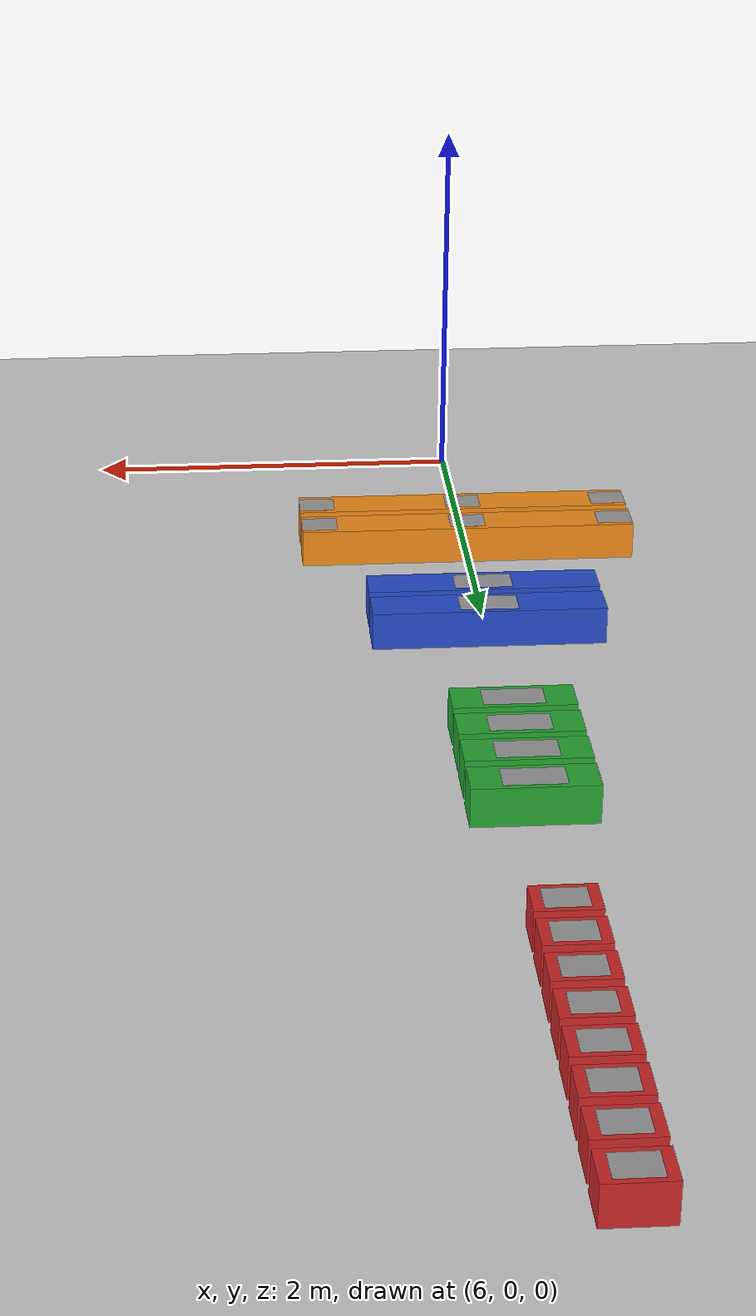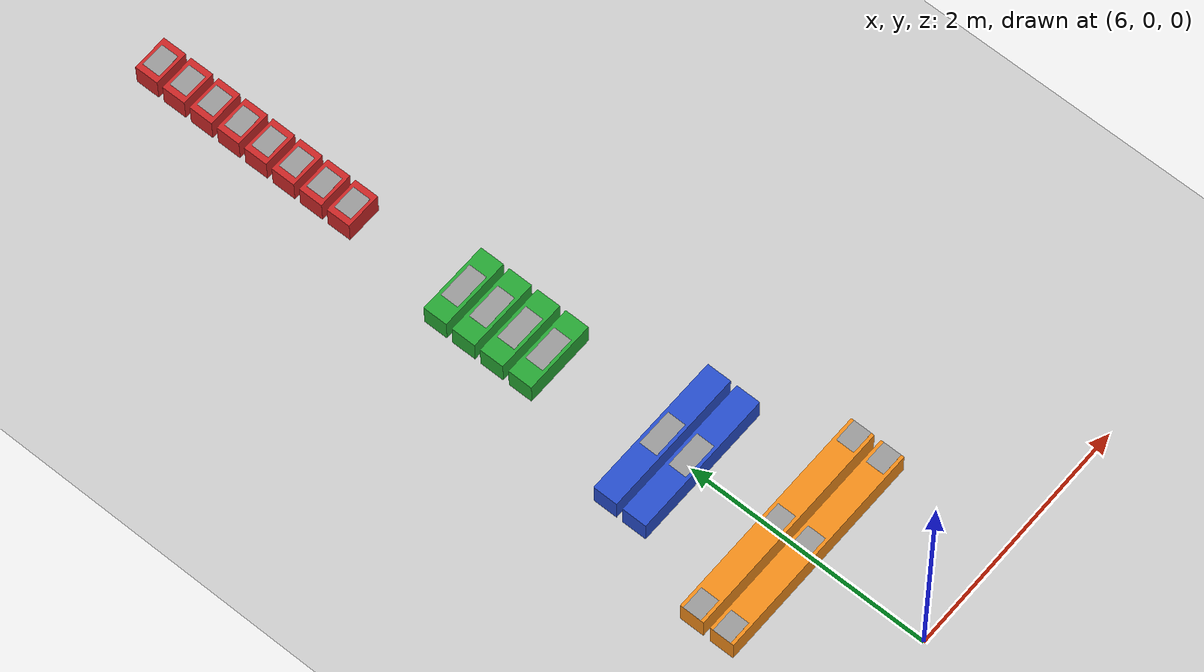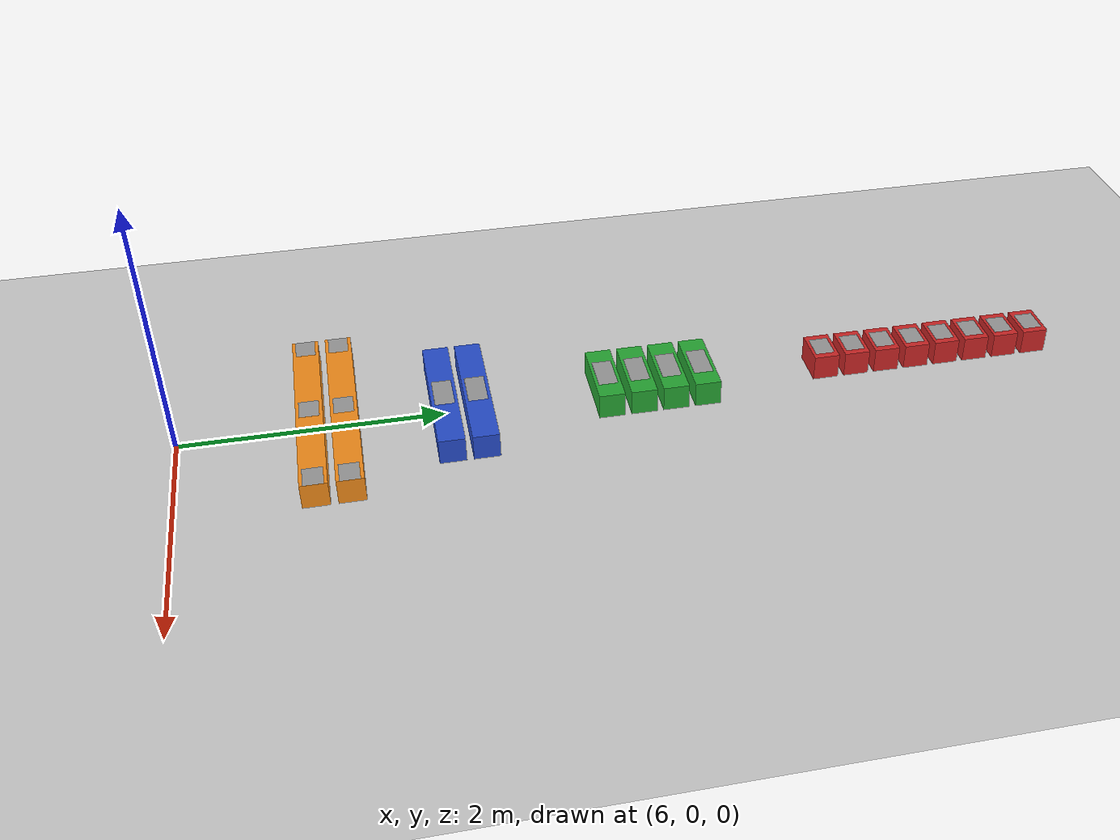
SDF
<sdf version="1.6">
 <world name="default">
  <light name="sun" type="directional">
   <pose>0 0 10 0 -0 0</pose>
   <diffuse>0.8 0.8 0.8 1</diffuse>
   <specular>0.2 0.2 0.2 1</specular>
   <attenuation>
    <range>1000</range>
    <constant>0.9</constant>
    <linear>0.01</linear>
    <quadratic>0.001</quadratic>
   </attenuation>
   <direction>-0.5 0.1 -0.9</direction>
  </light>
  <model name="ground_plane">
   <static>1</static>
   <link name="link">
    <collision name="collision">
     <geometry><plane><normal>0 0 1</normal><size>100 100</size></plane></geometry>
     <surface>
      <contact><collide_bitmask>65535</collide_bitmask></contact>
      <friction><ode><mu>100</mu><mu2>50</mu2></ode></friction>
     </surface>
    </collision>
    <visual name="visual">
     <cast_shadows>0</cast_shadows>
     <geometry><plane><normal>0 0 1</normal><size>100 100</size></plane></geometry>
     <material>
      <script><uri>file://media/materials/scripts/gazebo.material</uri><name>Gazebo/Grey</name></script>
     </material>
    </visual>
   </link>
  </model>
  <gravity>0 0 -9.8</gravity>
  <magnetic_field>6e-06 2.3e-05 -4.2e-05</magnetic_field>
  <atmosphere type="adiabatic"/>
  <physics name="default_physics" default="0" type="ode">
   <max_step_size>0.001</max_step_size>
   <real_time_factor>1</real_time_factor>
   <real_time_update_rate>1000</real_time_update_rate>
  </physics>
  <scene><ambient>0.4 0.4 0.4 1</ambient><background>0.7 0.7 0.7 1</background><shadows>1</shadows></scene>
  <audio><device>default</device></audio>
  <spherical_coordinates>
   <surface_model>EARTH_WGS84</surface_model>
   <latitude_deg>0</latitude_deg>
   <longitude_deg>0</longitude_deg>
   <elevation>0</elevation>
   <heading_deg>0</heading_deg>
  </spherical_coordinates>
  <model name="brick_red">
   <link name="base_link">
    <inertial>
     <mass>0.01</mass>
     <inertia><ixx>0.001</ixx><ixy>0</ixy><ixz>0</ixz><iyy>0.01</iyy><iyz>0</iyz><izz>0.01</izz></inertia>
    </inertial>
    <collision name="base_link_collision"><geometry><box><size>0.3 0.2 0.2</size></box></geometry></collision>
    <collision name="base_link_fixed_joint_lump__magnet_patch_collision_1">
     <pose>0 0 0.1 0 -0 0</pose>
     <geometry><box><size>0.1 0.025 0.0005</size></box></geometry>
    </collision>
    <visual name="base_link_visual">
     <geometry><box><size>0.3 0.2 0.2</size></box></geometry>
     <material>
      <script><name>Gazebo/Red</name><uri>file://media/materials/scripts/gazebo.material</uri></script>
     </material>
    </visual>
    <visual name="base_link_fixed_joint_lump__magnet_patch_visual_1">
     <pose>0 0 0.1 0 -0 0</pose>
     <geometry><box><size>0.2 0.15 0.001</size></box></geometry>
     <material>
      <script><name>Gazebo/Gray</name><uri>file://media/materials/scripts/gazebo.material</uri></script>
     </material>
    </visual>
   </link>
   <static>0</static>
   <plugin name="dipole_magnet" filename="libstorm_gazebo_dipole_magnet.so">
    <dipole_moment>0 0 0.1</dipole_moment>
    <shouldPublish>1</shouldPublish>
    <topicNs>magnet</topicNs>
    <updateRate>100</updateRate>
    <gain>1.0</gain>
    <bodyName>base_link</bodyName>
    <xyzOffset>0 0 -0.1</xyzOffset>
    <rpyOffset>0 -0 0</rpyOffset>
   </plugin>
   <pose>6 6.00001 0.100001 7e-06 -0 0.002784</pose>
  </model>
  <model name="brick_red_1">
   <link name="base_link">
    <inertial>
     <mass>0.01</mass>
     <inertia><ixx>0.001</ixx><ixy>0</ixy><ixz>0</ixz><iyy>0.01</iyy><iyz>0</iyz><izz>0.01</izz></inertia>
    </inertial>
    <collision name="base_link_collision"><geometry><box><size>0.3 0.2 0.2</size></box></geometry></collision>
    <collision name="base_link_fixed_joint_lump__magnet_patch_collision_1">
     <pose>0 0 0.1 0 -0 0</pose>
     <geometry><box><size>0.1 0.025 0.0005</size></box></geometry>
    </collision>
    <visual name="base_link_visual">
     <geometry><box><size>0.3 0.2 0.2</size></box></geometry>
     <material>
      <script><name>Gazebo/Red</name><uri>file://media/materials/scripts/gazebo.material</uri></script>
     </material>
    </visual>
    <visual name="base_link_fixed_joint_lump__magnet_patch_visual_1">
     <pose>0 0 0.1 0 -0 0</pose>
     <geometry><box><size>0.2 0.15 0.001</size></box></geometry>
     <material>
      <script><name>Gazebo/Gray</name><uri>file://media/materials/scripts/gazebo.material</uri></script>
     </material>
    </visual>
   </link>
   <static>0</static>
   <plugin name="dipole_magnet" filename="libstorm_gazebo_dipole_magnet.so">
    <dipole_moment>0 0 0.1</dipole_moment>
    <shouldPublish>1</shouldPublish>
    <topicNs>magnet</topicNs>
    <updateRate>100</updateRate>
    <gain>1.0</gain>
    <bodyName>base_link</bodyName>
    <xyzOffset>0 0 -0.1</xyzOffset>
    <rpyOffset>0 -0 0</rpyOffset>
   </plugin>
   <pose>6.00001 6.24996 0.1 0 -0 -0.004329</pose>
  </model>
  <model name="brick_red_2">
   <link name="base_link">
    <inertial>
     <mass>0.01</mass>
     <inertia><ixx>0.001</ixx><ixy>0</ixy><ixz>0</ixz><iyy>0.01</iyy><iyz>0</iyz><izz>0.01</izz></inertia>
    </inertial>
    <collision name="base_link_collision"><geometry><box><size>0.3 0.2 0.2</size></box></geometry></collision>
    <collision name="base_link_fixed_joint_lump__magnet_patch_collision_1">
     <pose>0 0 0.1 0 -0 0</pose>
     <geometry><box><size>0.1 0.025 0.0005</size></box></geometry>
    </collision>
    <visual name="base_link_visual">
     <geometry><box><size>0.3 0.2 0.2</size></box></geometry>
     <material>
      <script><name>Gazebo/Red</name><uri>file://media/materials/scripts/gazebo.material</uri></script>
     </material>
    </visual>
    <visual name="base_link_fixed_joint_lump__magnet_patch_visual_1">
     <pose>0 0 0.1 0 -0 0</pose>
     <geometry><box><size>0.2 0.15 0.001</size></box></geometry>
     <material>
      <script><name>Gazebo/Gray</name><uri>file://media/materials/scripts/gazebo.material</uri></script>
     </material>
    </visual>
   </link>
   <static>0</static>
   <plugin name="dipole_magnet" filename="libstorm_gazebo_dipole_magnet.so">
    <dipole_moment>0 0 0.1</dipole_moment>
    <shouldPublish>1</shouldPublish>
    <topicNs>magnet</topicNs>
    <updateRate>100</updateRate>
    <gain>1.0</gain>
    <bodyName>base_link</bodyName>
    <xyzOffset>0 0 -0.1</xyzOffset>
    <rpyOffset>0 -0 0</rpyOffset>
   </plugin>
   <pose>6 6.49999 0.1 -2e-06 0 0.002053</pose>
  </model>
  <model name="brick_red_3">
   <link name="base_link">
    <inertial>
     <mass>0.01</mass>
     <inertia><ixx>0.001</ixx><ixy>0</ixy><ixz>0</ixz><iyy>0.01</iyy><iyz>0</iyz><izz>0.01</izz></inertia>
    </inertial>
    <collision name="base_link_collision"><geometry><box><size>0.3 0.2 0.2</size></box></geometry></collision>
    <collision name="base_link_fixed_joint_lump__magnet_patch_collision_1">
     <pose>0 0 0.1 0 -0 0</pose>
     <geometry><box><size>0.1 0.025 0.0005</size></box></geometry>
    </collision>
    <visual name="base_link_visual">
     <geometry><box><size>0.3 0.2 0.2</size></box></geometry>
     <material>
      <script><name>Gazebo/Red</name><uri>file://media/materials/scripts/gazebo.material</uri></script>
     </material>
    </visual>
    <visual name="base_link_fixed_joint_lump__magnet_patch_visual_1">
     <pose>0 0 0.1 0 -0 0</pose>
     <geometry><box><size>0.2 0.15 0.001</size></box></geometry>
     <material>
      <script><name>Gazebo/Gray</name><uri>file://media/materials/scripts/gazebo.material</uri></script>
     </material>
    </visual>
   </link>
   <static>0</static>
   <plugin name="dipole_magnet" filename="libstorm_gazebo_dipole_magnet.so">
    <dipole_moment>0 0 0.1</dipole_moment>
    <shouldPublish>1</shouldPublish>
    <topicNs>magnet</topicNs>
    <updateRate>100</updateRate>
    <gain>1.0</gain>
    <bodyName>base_link</bodyName>
    <xyzOffset>0 0 -0.1</xyzOffset>
    <rpyOffset>0 -0 0</rpyOffset>
   </plugin>
   <pose>5.99993 5.49986 0.1 0 -0 -0.003085</pose>
  </model>
  <model name="brick_red_4">
   <link name="base_link">
    <inertial>
     <mass>0.01</mass>
     <inertia><ixx>0.001</ixx><ixy>0</ixy><ixz>0</ixz><iyy>0.01</iyy><iyz>0</iyz><izz>0.01</izz></inertia>
    </inertial>
    <collision name="base_link_collision"><geometry><box><size>0.3 0.2 0.2</size></box></geometry></collision>
    <collision name="base_link_fixed_joint_lump__magnet_patch_collision_1">
     <pose>0 0 0.1 0 -0 0</pose>
     <geometry><box><size>0.1 0.025 0.0005</size></box></geometry>
    </collision>
    <visual name="base_link_visual">
     <geometry><box><size>0.3 0.2 0.2</size></box></geometry>
     <material>
      <script><name>Gazebo/Red</name><uri>file://media/materials/scripts/gazebo.material</uri></script>
     </material>
    </visual>
    <visual name="base_link_fixed_joint_lump__magnet_patch_visual_1">
     <pose>0 0 0.1 0 -0 0</pose>
     <geometry><box><size>0.2 0.15 0.001</size></box></geometry>
     <material>
      <script><name>Gazebo/Gray</name><uri>file://media/materials/scripts/gazebo.material</uri></script>
     </material>
    </visual>
   </link>
   <static>0</static>
   <plugin name="dipole_magnet" filename="libstorm_gazebo_dipole_magnet.so">
    <dipole_moment>0 0 0.1</dipole_moment>
    <shouldPublish>1</shouldPublish>
    <topicNs>magnet</topicNs>
    <updateRate>100</updateRate>
    <gain>1.0</gain>
    <bodyName>base_link</bodyName>
    <xyzOffset>0 0 -0.1</xyzOffset>
    <rpyOffset>0 -0 0</rpyOffset>
   </plugin>
   <pose>6 6.75008 0.1 -4e-06 -0 0.003528</pose>
  </model>
  <model name="brick_red_6">
   <link name="base_link">
    <inertial>
     <mass>0.01</mass>
     <inertia><ixx>0.001</ixx><ixy>0</ixy><ixz>0</ixz><iyy>0.01</iyy><iyz>0</iyz><izz>0.01</izz></inertia>
    </inertial>
    <collision name="base_link_collision"><geometry><box><size>0.3 0.2 0.2</size></box></geometry></collision>
    <collision name="base_link_fixed_joint_lump__magnet_patch_collision_1">
     <pose>0 0 0.1 0 -0 0</pose>
     <geometry><box><size>0.1 0.025 0.0005</size></box></geometry>
    </collision>
    <visual name="base_link_visual">
     <geometry><box><size>0.3 0.2 0.2</size></box></geometry>
     <material>
      <script><name>Gazebo/Red</name><uri>file://media/materials/scripts/gazebo.material</uri></script>
     </material>
    </visual>
    <visual name="base_link_fixed_joint_lump__magnet_patch_visual_1">
     <pose>0 0 0.1 0 -0 0</pose>
     <geometry><box><size>0.2 0.15 0.001</size></box></geometry>
     <material>
      <script><name>Gazebo/Gray</name><uri>file://media/materials/scripts/gazebo.material</uri></script>
     </material>
    </visual>
   </link>
   <static>0</static>
   <plugin name="dipole_magnet" filename="libstorm_gazebo_dipole_magnet.so">
    <dipole_moment>0 0 0.1</dipole_moment>
    <shouldPublish>1</shouldPublish>
    <topicNs>magnet</topicNs>
    <updateRate>100</updateRate>
    <gain>1.0</gain>
    <bodyName>base_link</bodyName>
    <xyzOffset>0 0 -0.1</xyzOffset>
    <rpyOffset>0 -0 0</rpyOffset>
   </plugin>
   <pose>5.99999 5.75 0.1 1e-06 -0 -0.001323</pose>
  </model>
  <model name="brick_red_0">
   <link name="base_link">
    <inertial>
     <mass>0.01</mass>
     <inertia><ixx>0.001</ixx><ixy>0</ixy><ixz>0</ixz><iyy>0.01</iyy><iyz>0</iyz><izz>0.01</izz></inertia>
    </inertial>
    <collision name="base_link_collision"><geometry><box><size>0.3 0.2 0.2</size></box></geometry></collision>
    <collision name="base_link_fixed_joint_lump__magnet_patch_collision_1">
     <pose>0 0 0.1 0 -0 0</pose>
     <geometry><box><size>0.1 0.025 0.0005</size></box></geometry>
    </collision>
    <visual name="base_link_visual">
     <geometry><box><size>0.3 0.2 0.2</size></box></geometry>
     <material>
      <script><name>Gazebo/Red</name><uri>file://media/materials/scripts/gazebo.material</uri></script>
     </material>
    </visual>
    <visual name="base_link_fixed_joint_lump__magnet_patch_visual_1">
     <pose>0 0 0.1 0 -0 0</pose>
     <geometry><box><size>0.2 0.15 0.001</size></box></geometry>
     <material>
      <script><name>Gazebo/Gray</name><uri>file://media/materials/scripts/gazebo.material</uri></script>
     </material>
    </visual>
   </link>
   <static>0</static>
   <plugin name="dipole_magnet" filename="libstorm_gazebo_dipole_magnet.so">
    <dipole_moment>0 0 0.1</dipole_moment>
    <shouldPublish>1</shouldPublish>
    <topicNs>magnet</topicNs>
    <updateRate>100</updateRate>
    <gain>1.0</gain>
    <bodyName>base_link</bodyName>
    <xyzOffset>0 0 -0.1</xyzOffset>
    <rpyOffset>0 -0 0</rpyOffset>
   </plugin>
   <pose>6 5.25001 0.1 4e-06 -0 0.001949</pose>
  </model>
  <model name="brick_red_5">
   <link name="base_link">
    <inertial>
     <mass>0.01</mass>
     <inertia><ixx>0.001</ixx><ixy>0</ixy><ixz>0</ixz><iyy>0.01</iyy><iyz>0</iyz><izz>0.01</izz></inertia>
    </inertial>
    <collision name="base_link_collision"><geometry><box><size>0.3 0.2 0.2</size></box></geometry></collision>
    <collision name="base_link_fixed_joint_lump__magnet_patch_collision_1">
     <pose>0 0 0.1 0 -0 0</pose>
     <geometry><box><size>0.1 0.025 0.0005</size></box></geometry>
    </collision>
    <visual name="base_link_visual">
     <geometry><box><size>0.3 0.2 0.2</size></box></geometry>
     <material>
      <script><name>Gazebo/Red</name><uri>file://media/materials/scripts/gazebo.material</uri></script>
     </material>
    </visual>
    <visual name="base_link_fixed_joint_lump__magnet_patch_visual_1">
     <pose>0 0 0.1 0 -0 0</pose>
     <geometry><box><size>0.2 0.15 0.001</size></box></geometry>
     <material>
      <script><name>Gazebo/Gray</name><uri>file://media/materials/scripts/gazebo.material</uri></script>
     </material>
    </visual>
   </link>
   <static>0</static>
   <plugin name="dipole_magnet" filename="libstorm_gazebo_dipole_magnet.so">
    <dipole_moment>0 0 0.1</dipole_moment>
    <shouldPublish>1</shouldPublish>
    <topicNs>magnet</topicNs>
    <updateRate>100</updateRate>
    <gain>1.0</gain>
    <bodyName>base_link</bodyName>
    <xyzOffset>0 0 -0.1</xyzOffset>
    <rpyOffset>0 -0 0</rpyOffset>
   </plugin>
   <pose>6 4.99992 0.1 -4e-06 0 0.003468</pose>
  </model>
  <model name="brick_green">
   <link name="base_link">
    <inertial>
     <mass>0.01</mass>
     <inertia><ixx>0.001</ixx><ixy>0</ixy><ixz>0</ixz><iyy>0.01</iyy><iyz>0</iyz><izz>0.01</izz></inertia>
    </inertial>
    <collision name="base_link_collision"><geometry><box><size>0.6 0.2 0.2</size></box></geometry></collision>
    <collision name="base_link_fixed_joint_lump__magnet_patch_collision_1">
     <pose>0 0 0.1 0 -0 0</pose>
     <geometry><box><size>0.1 0.025 0.0005</size></box></geometry>
    </collision>
    <visual name="base_link_visual">
     <geometry><box><size>0.6 0.2 0.2</size></box></geometry>
     <material>
      <script><name>Gazebo/Green</name><uri>file://media/materials/scripts/gazebo.material</uri></script>
     </material>
    </visual>
    <visual name="base_link_fixed_joint_lump__magnet_patch_visual_1">
     <pose>0 0 0.1 0 -0 0</pose>
     <geometry><box><size>0.3 0.15 0.001</size></box></geometry>
     <material>
      <script><name>Gazebo/Gray</name><uri>file://media/materials/scripts/gazebo.material</uri></script>
     </material>
    </visual>
   </link>
   <static>0</static>
   <plugin name="dipole_magnet" filename="libstorm_gazebo_dipole_magnet.so">
    <dipole_moment>0 0 0.1</dipole_moment>
    <shouldPublish>1</shouldPublish>
    <topicNs>magnet</topicNs>
    <updateRate>100</updateRate>
    <gain>1.0</gain>
    <bodyName>base_link</bodyName>
    <xyzOffset>0 0 -0.1</xyzOffset>
    <rpyOffset>0 -0 0</rpyOffset>
   </plugin>
   <pose>6 4.0009 0.1 0 -0 3e-06</pose>
  </model>
  <model name="brick_green_0">
   <link name="base_link">
    <inertial>
     <mass>0.01</mass>
     <inertia><ixx>0.001</ixx><ixy>0</ixy><ixz>0</ixz><iyy>0.01</iyy><iyz>0</iyz><izz>0.01</izz></inertia>
    </inertial>
    <collision name="base_link_collision"><geometry><box><size>0.6 0.2 0.2</size></box></geometry></collision>
    <collision name="base_link_fixed_joint_lump__magnet_patch_collision_1">
     <pose>0 0 0.1 0 -0 0</pose>
     <geometry><box><size>0.1 0.025 0.0005</size></box></geometry>
    </collision>
    <visual name="base_link_visual">
     <geometry><box><size>0.6 0.2 0.2</size></box></geometry>
     <material>
      <script><name>Gazebo/Green</name><uri>file://media/materials/scripts/gazebo.material</uri></script>
     </material>
    </visual>
    <visual name="base_link_fixed_joint_lump__magnet_patch_visual_1">
     <pose>0 0 0.1 0 -0 0</pose>
     <geometry><box><size>0.3 0.15 0.001</size></box></geometry>
     <material>
      <script><name>Gazebo/Gray</name><uri>file://media/materials/scripts/gazebo.material</uri></script>
     </material>
    </visual>
   </link>
   <static>0</static>
   <plugin name="dipole_magnet" filename="libstorm_gazebo_dipole_magnet.so">
    <dipole_moment>0 0 0.1</dipole_moment>
    <shouldPublish>1</shouldPublish>
    <topicNs>magnet</topicNs>
    <updateRate>100</updateRate>
    <gain>1.0</gain>
    <bodyName>base_link</bodyName>
    <xyzOffset>0 0 -0.1</xyzOffset>
    <rpyOffset>0 -0 0</rpyOffset>
   </plugin>
   <pose>5.99999 3.7497 0.1 -8e-06 1e-06 1.7e-05</pose>
  </model>
  <model name="brick_green_1">
   <link name="base_link">
    <inertial>
     <mass>0.01</mass>
     <inertia><ixx>0.001</ixx><ixy>0</ixy><ixz>0</ixz><iyy>0.01</iyy><iyz>0</iyz><izz>0.01</izz></inertia>
    </inertial>
    <collision name="base_link_collision"><geometry><box><size>0.6 0.2 0.2</size></box></geometry></collision>
    <collision name="base_link_fixed_joint_lump__magnet_patch_collision_1">
     <pose>0 0 0.1 0 -0 0</pose>
     <geometry><box><size>0.1 0.025 0.0005</size></box></geometry>
    </collision>
    <visual name="base_link_visual">
     <geometry><box><size>0.6 0.2 0.2</size></box></geometry>
     <material>
      <script><name>Gazebo/Green</name><uri>file://media/materials/scripts/gazebo.material</uri></script>
     </material>
    </visual>
    <visual name="base_link_fixed_joint_lump__magnet_patch_visual_1">
     <pose>0 0 0.1 0 -0 0</pose>
     <geometry><box><size>0.3 0.15 0.001</size></box></geometry>
     <material>
      <script><name>Gazebo/Gray</name><uri>file://media/materials/scripts/gazebo.material</uri></script>
     </material>
    </visual>
   </link>
   <static>0</static>
   <plugin name="dipole_magnet" filename="libstorm_gazebo_dipole_magnet.so">
    <dipole_moment>0 0 0.1</dipole_moment>
    <shouldPublish>1</shouldPublish>
    <topicNs>magnet</topicNs>
    <updateRate>100</updateRate>
    <gain>1.0</gain>
    <bodyName>base_link</bodyName>
    <xyzOffset>0 0 -0.1</xyzOffset>
    <rpyOffset>0 -0 0</rpyOffset>
   </plugin>
   <pose>6 3.5004 0.099999 4e-06 1e-06 3.8e-05</pose>
  </model>
  <model name="brick_green_2">
   <link name="base_link">
    <inertial>
     <mass>0.01</mass>
     <inertia><ixx>0.001</ixx><ixy>0</ixy><ixz>0</ixz><iyy>0.01</iyy><iyz>0</iyz><izz>0.01</izz></inertia>
    </inertial>
    <collision name="base_link_collision"><geometry><box><size>0.6 0.2 0.2</size></box></geometry></collision>
    <collision name="base_link_fixed_joint_lump__magnet_patch_collision_1">
     <pose>0 0 0.1 0 -0 0</pose>
     <geometry><box><size>0.1 0.025 0.0005</size></box></geometry>
    </collision>
    <visual name="base_link_visual">
     <geometry><box><size>0.6 0.2 0.2</size></box></geometry>
     <material>
      <script><name>Gazebo/Green</name><uri>file://media/materials/scripts/gazebo.material</uri></script>
     </material>
    </visual>
    <visual name="base_link_fixed_joint_lump__magnet_patch_visual_1">
     <pose>0 0 0.1 0 -0 0</pose>
     <geometry><box><size>0.3 0.15 0.001</size></box></geometry>
     <material>
      <script><name>Gazebo/Gray</name><uri>file://media/materials/scripts/gazebo.material</uri></script>
     </material>
    </visual>
   </link>
   <static>0</static>
   <plugin name="dipole_magnet" filename="libstorm_gazebo_dipole_magnet.so">
    <dipole_moment>0 0 0.1</dipole_moment>
    <shouldPublish>1</shouldPublish>
    <topicNs>magnet</topicNs>
    <updateRate>100</updateRate>
    <gain>1.0</gain>
    <bodyName>base_link</bodyName>
    <xyzOffset>0 0 -0.1</xyzOffset>
    <rpyOffset>0 -0 0</rpyOffset>
   </plugin>
   <pose>5.99999 3.24917 0.099998 5e-06 -0 0.001764</pose>
  </model>
  <model name="brick_blue">
   <link name="base_link">
    <inertial>
     <mass>0.01</mass>
     <inertia><ixx>0.001</ixx><ixy>0</ixy><ixz>0</ixz><iyy>0.01</iyy><iyz>0</iyz><izz>0.01</izz></inertia>
    </inertial>
    <collision name="base_link_collision"><geometry><box><size>1.2 0.2 0.2</size></box></geometry></collision>
    <collision name="base_link_fixed_joint_lump__magnet_patch_collision_1">
     <pose>0 0 0.1 0 -0 0</pose>
     <geometry><box><size>0.1 0.025 0.0005</size></box></geometry>
    </collision>
    <visual name="base_link_visual">
     <geometry><box><size>1.2 0.2 0.2</size></box></geometry>
     <material>
      <script><name>Gazebo/Blue</name><uri>file://media/materials/scripts/gazebo.material</uri></script>
     </material>
    </visual>
    <visual name="base_link_fixed_joint_lump__magnet_patch_visual_1">
     <pose>0 0 0.1 0 -0 0</pose>
     <geometry><box><size>0.3 0.15 0.001</size></box></geometry>
     <material>
      <script><name>Gazebo/Gray</name><uri>file://media/materials/scripts/gazebo.material</uri></script>
     </material>
    </visual>
   </link>
   <static>0</static>
   <plugin name="dipole_magnet" filename="libstorm_gazebo_dipole_magnet.so">
    <dipole_moment>0 0 0.1</dipole_moment>
    <shouldPublish>1</shouldPublish>
    <topicNs>magnet</topicNs>
    <updateRate>100</updateRate>
    <gain>1.0</gain>
    <bodyName>base_link</bodyName>
    <xyzOffset>0 0 -0.1</xyzOffset>
    <rpyOffset>0 -0 0</rpyOffset>
   </plugin>
   <pose>6 2.25099 0.1 0 -0 3e-06</pose>
  </model>
  <model name="brick_blue_0">
   <link name="base_link">
    <inertial>
     <mass>0.01</mass>
     <inertia><ixx>0.001</ixx><ixy>0</ixy><ixz>0</ixz><iyy>0.01</iyy><iyz>0</iyz><izz>0.01</izz></inertia>
    </inertial>
    <collision name="base_link_collision"><geometry><box><size>1.2 0.2 0.2</size></box></geometry></collision>
    <collision name="base_link_fixed_joint_lump__magnet_patch_collision_1">
     <pose>0 0 0.1 0 -0 0</pose>
     <geometry><box><size>0.1 0.025 0.0005</size></box></geometry>
    </collision>
    <visual name="base_link_visual">
     <geometry><box><size>1.2 0.2 0.2</size></box></geometry>
     <material>
      <script><name>Gazebo/Blue</name><uri>file://media/materials/scripts/gazebo.material</uri></script>
     </material>
    </visual>
    <visual name="base_link_fixed_joint_lump__magnet_patch_visual_1">
     <pose>0 0 0.1 0 -0 0</pose>
     <geometry><box><size>0.3 0.15 0.001</size></box></geometry>
     <material>
      <script><name>Gazebo/Gray</name><uri>file://media/materials/scripts/gazebo.material</uri></script>
     </material>
    </visual>
   </link>
   <static>0</static>
   <plugin name="dipole_magnet" filename="libstorm_gazebo_dipole_magnet.so">
    <dipole_moment>0 0 0.1</dipole_moment>
    <shouldPublish>1</shouldPublish>
    <topicNs>magnet</topicNs>
    <updateRate>100</updateRate>
    <gain>1.0</gain>
    <bodyName>base_link</bodyName>
    <xyzOffset>0 0 -0.1</xyzOffset>
    <rpyOffset>0 -0 0</rpyOffset>
   </plugin>
   <pose>6 1.999 0.099997 6e-06 -3e-06 -1e-06</pose>
  </model>
  <model name="brick_orange">
   <link name="base_link">
    <inertial>
     <mass>0.01</mass>
     <inertia><ixx>0.001</ixx><ixy>0</ixy><ixz>0</ixz><iyy>0.01</iyy><iyz>0</iyz><izz>0.01</izz></inertia>
    </inertial>
    <collision name="base_link_collision"><geometry><box><size>1.8 0.2 0.2</size></box></geometry></collision>
    <collision name="base_link_fixed_joint_lump__magnet_patch_collision_0">
     <pose>-0.805 0 0.1 0 -0 0</pose>
     <geometry><box><size>0.2 0.15 0.0005</size></box></geometry>
    </collision>
    <collision name="base_link_fixed_joint_lump__magnet_patch_collision_1">
     <pose>0 0 0.1 0 -0 0</pose>
     <geometry><box><size>0.15 0.15 0.0005</size></box></geometry>
    </collision>
    <collision name="base_link_fixed_joint_lump__magnet_patch_collision_2">
     <pose>0.805 0 0.1 0 -0 0</pose>
     <geometry><box><size>0.15 0.15 0.0005</size></box></geometry>
    </collision>
    <visual name="base_link_visual">
     <geometry><box><size>1.8 0.2 0.2</size></box></geometry>
     <material>
      <script><name>Gazebo/Orange</name><uri>file://media/materials/scripts/gazebo.material</uri></script>
     </material>
    </visual>
    <visual name="base_link_fixed_joint_lump__magnet_patch_visual_0">
     <pose>-0.805 0 0.1 0 -0 0</pose>
     <geometry><box><size>0.19 0.15 0.001</size></box></geometry>
     <material>
      <script><name>Gazebo/Gray</name><uri>file://media/materials/scripts/gazebo.material</uri></script>
     </material>
    </visual>
    <visual name="base_link_fixed_joint_lump__magnet_patch_visual_1">
     <pose>0 0 0.1 0 -0 0</pose>
     <geometry><box><size>0.19 0.15 0.001</size></box></geometry>
     <material>
      <script><name>Gazebo/Gray</name><uri>file://media/materials/scripts/gazebo.material</uri></script>
     </material>
    </visual>
    <visual name="base_link_fixed_joint_lump__magnet_patch_visual_2">
     <pose>0.805 0 0.1 0 -0 0</pose>
     <geometry><box><size>0.19 0.15 0.001</size></box></geometry>
     <material>
      <script><name>Gazebo/Gray</name><uri>file://media/materials/scripts/gazebo.material</uri></script>
     </material>
    </visual>
   </link>
   <static>0</static>
   <plugin name="dipole_magnet" filename="libstorm_gazebo_dipole_magnet.so">
    <dipole_moment>0 0 0.1</dipole_moment>
    <shouldPublish>1</shouldPublish>
    <topicNs>magnet</topicNs>
    <updateRate>100</updateRate>
    <gain>1.0</gain>
    <bodyName>base_link</bodyName>
    <xyzOffset>0 0 -0.1</xyzOffset>
    <rpyOffset>0 -0 0</rpyOffset>
   </plugin>
   <plugin name="dipole_magnet" filename="libstorm_gazebo_dipole_magnet.so">
    <dipole_moment>0 0 0.1</dipole_moment>
    <shouldPublish>1</shouldPublish>
    <topicNs>magnet</topicNs>
    <updateRate>100</updateRate>
    <gain>1.0</gain>
    <bodyName>base_link</bodyName>
    <xyzOffset>-0.805 0 -0.1</xyzOffset>
    <rpyOffset>0 -0 0</rpyOffset>
   </plugin>
   <plugin name="dipole_magnet" filename="libstorm_gazebo_dipole_magnet.so">
    <dipole_moment>0 0 0.1</dipole_moment>
    <shouldPublish>1</shouldPublish>
    <topicNs>magnet</topicNs>
    <updateRate>100</updateRate>
    <gain>1.0</gain>
    <bodyName>base_link</bodyName>
    <xyzOffset>0.805 0 -0.1</xyzOffset>
    <rpyOffset>0 -0 0</rpyOffset>
   </plugin>
   <pose>6 1.25269 0.1 0 -0 0</pose>
  </model>
  <model name="brick_orange_0">
   <link name="base_link">
    <inertial>
     <mass>0.01</mass>
     <inertia><ixx>0.001</ixx><ixy>0</ixy><ixz>0</ixz><iyy>0.01</iyy><iyz>0</iyz><izz>0.01</izz></inertia>
    </inertial>
    <collision name="base_link_collision"><geometry><box><size>1.8 0.2 0.2</size></box></geometry></collision>
    <collision name="base_link_fixed_joint_lump__magnet_patch_collision_0">
     <pose>-0.805 0 0.1 0 -0 0</pose>
     <geometry><box><size>0.2 0.15 0.0005</size></box></geometry>
    </collision>
    <collision name="base_link_fixed_joint_lump__magnet_patch_collision_1">
     <pose>0 0 0.1 0 -0 0</pose>
     <geometry><box><size>0.15 0.15 0.0005</size></box></geometry>
    </collision>
    <collision name="base_link_fixed_joint_lump__magnet_patch_collision_2">
     <pose>0.805 0 0.1 0 -0 0</pose>
     <geometry><box><size>0.15 0.15 0.0005</size></box></geometry>
    </collision>
    <visual name="base_link_visual">
     <geometry><box><size>1.8 0.2 0.2</size></box></geometry>
     <material>
      <script><name>Gazebo/Orange</name><uri>file://media/materials/scripts/gazebo.material</uri></script>
     </material>
    </visual>
    <visual name="base_link_fixed_joint_lump__magnet_patch_visual_0">
     <pose>-0.805 0 0.1 0 -0 0</pose>
     <geometry><box><size>0.19 0.15 0.001</size></box></geometry>
     <material>
      <script><name>Gazebo/Gray</name><uri>file://media/materials/scripts/gazebo.material</uri></script>
     </material>
    </visual>
    <visual name="base_link_fixed_joint_lump__magnet_patch_visual_1">
     <pose>0 0 0.1 0 -0 0</pose>
     <geometry><box><size>0.19 0.15 0.001</size></box></geometry>
     <material>
      <script><name>Gazebo/Gray</name><uri>file://media/materials/scripts/gazebo.material</uri></script>
     </material>
    </visual>
    <visual name="base_link_fixed_joint_lump__magnet_patch_visual_2">
     <pose>0.805 0 0.1 0 -0 0</pose>
     <geometry><box><size>0.19 0.15 0.001</size></box></geometry>
     <material>
      <script><name>Gazebo/Gray</name><uri>file://media/materials/scripts/gazebo.material</uri></script>
     </material>
    </visual>
   </link>
   <static>0</static>
   <plugin name="dipole_magnet" filename="libstorm_gazebo_dipole_magnet.so">
    <dipole_moment>0 0 0.1</dipole_moment>
    <shouldPublish>1</shouldPublish>
    <topicNs>magnet</topicNs>
    <updateRate>100</updateRate>
    <gain>1.0</gain>
    <bodyName>base_link</bodyName>
    <xyzOffset>0 0 -0.1</xyzOffset>
    <rpyOffset>0 -0 0</rpyOffset>
   </plugin>
   <plugin name="dipole_magnet" filename="libstorm_gazebo_dipole_magnet.so">
    <dipole_moment>0 0 0.1</dipole_moment>
    <shouldPublish>1</shouldPublish>
    <topicNs>magnet</topicNs>
    <updateRate>100</updateRate>
    <gain>1.0</gain>
    <bodyName>base_link</bodyName>
    <xyzOffset>-0.805 0 -0.1</xyzOffset>
    <rpyOffset>0 -0 0</rpyOffset>
   </plugin>
   <plugin name="dipole_magnet" filename="libstorm_gazebo_dipole_magnet.so">
    <dipole_moment>0 0 0.1</dipole_moment>
    <shouldPublish>1</shouldPublish>
    <topicNs>magnet</topicNs>
    <updateRate>100</updateRate>
    <gain>1.0</gain>
    <bodyName>base_link</bodyName>
    <xyzOffset>0.805 0 -0.1</xyzOffset>
    <rpyOffset>0 -0 0</rpyOffset>
   </plugin>
   <pose>6 0.997163 0.099992 3e-06 -0 -1e-06</pose>
  </model>
 </world>
</sdf>
